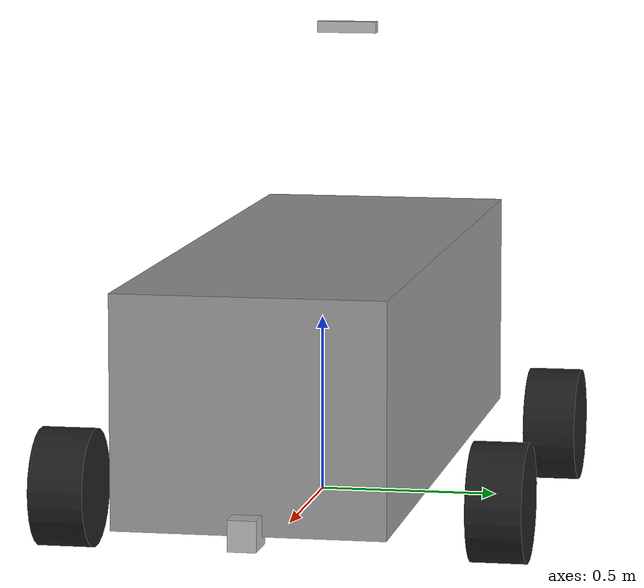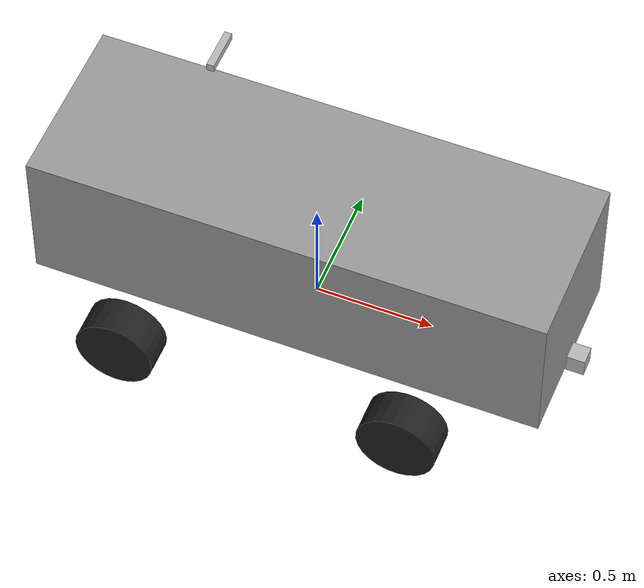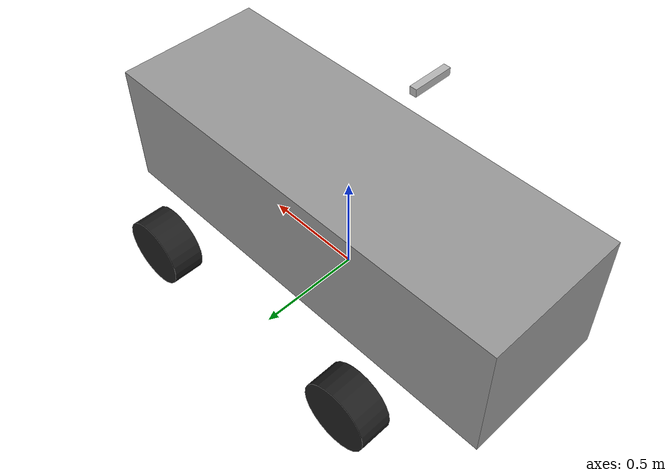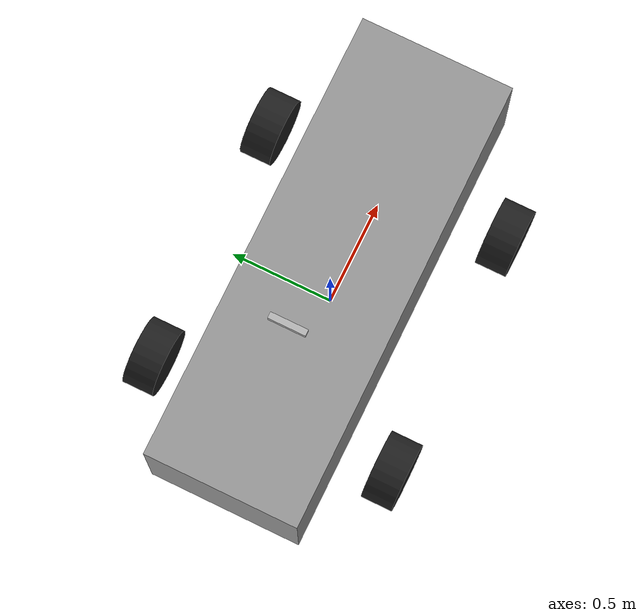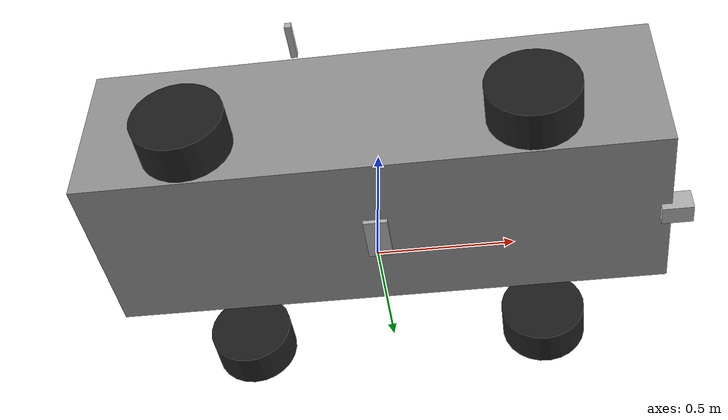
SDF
<?xml version="1.0"?>
<sdf version="1.6">
  <model name="QEV2">
    <link name="chassis">
      <pose>0 0 0.4 0 0 0</pose>
      <inertial>
        <mass>46</mass>
        <inertia>
          <ixx>3.5923125</ixx>
          <iyy>19.4891458333</iyy>
          <izz>20.0385583333</izz>
          <ixy>0</ixy>
          <ixz>0</ixz>
          <iyz>0</iyz>
        </inertia>
      </inertial>
      <self_collide>0</self_collide>
      <enable_wind>0</enable_wind>
      <kinematic>0</kinematic>
      <collision name="collision">
        <geometry>
          <box>
            <size>2.165 0.735 0.63</size>
          </box>
        </geometry>
        <surface>
          <friction>
            <ode>
              <mu>1</mu>
              <mu2>1</mu2>
              <fdir1>0 0 0</fdir1>
              <slip1>0</slip1>
              <slip2>0</slip2>
            </ode>
            <torsional>
              <coefficient>1</coefficient>
              <patch_radius>0</patch_radius>
              <surface_radius>0</surface_radius>
              <use_patch_radius>1</use_patch_radius>
              <ode>
                <slip>0</slip>
              </ode>
            </torsional>
          </friction>
          <bounce>
            <restitution_coefficient>0</restitution_coefficient>
            <threshold>1e+06</threshold>
          </bounce>
          <contact>
            <collide_without_contact>0</collide_without_contact>
            <collide_without_contact_bitmask>1</collide_without_contact_bitmask>
            <collide_bitmask>1</collide_bitmask>
            <ode>
              <soft_cfm>0</soft_cfm>
              <soft_erp>0.2</soft_erp>
              <kp>1e+13</kp>
              <kd>1</kd>
              <max_vel>0.01</max_vel>
              <min_depth>0</min_depth>
            </ode>
            <bullet>
              <split_impulse>1</split_impulse>
              <split_impulse_penetration_threshold>-0.01</split_impulse_penetration_threshold>
              <soft_cfm>0</soft_cfm>
              <soft_erp>0.2</soft_erp>
              <kp>1e+13</kp>
              <kd>1</kd>
            </bullet>
          </contact>
        </surface>
      </collision>
      <visual name="visual">
        <geometry>
          <box>
            <size>2.165 0.735 0.63</size>
          </box>
        </geometry>
        <material>
          <script>
            <uri>file://media/materials/scripts/gazebo.material</uri>
            <name>Gazebo/Grey</name>
          </script>
        </material>
        <transparency>0</transparency>
        <cast_shadows>1</cast_shadows>
      </visual>
    </link>
    <link name="wheel_front_right">
      <pose>0.6 -0.6 0.1 -1.5707963267948966 -0.08726646259971647 0</pose>
      <inertial>
        <mass>3</mass>
        <inertia>
          <ixx>0.0262499475</ixx>
          <iyy>0.0262499475</iyy>
          <izz>0.040887015</izz>
          <ixy>0</ixy>
          <ixz>0</ixz>
          <iyz>0</iyz>
        </inertia>
      </inertial>
      <self_collide>0</self_collide>
      <enable_wind>0</enable_wind>
      <kinematic>0</kinematic>
      <collision name="collision">
        <geometry>
          <cylinder>
            <radius>.1651</radius>
            <length>.1524</length>
          </cylinder>
        </geometry>
        <surface>
          <friction>
            <ode>
              <mu>1</mu>
              <mu2>1</mu2>
              <fdir1>0 0 0</fdir1>
              <slip1>0</slip1>
              <slip2>0</slip2>
            </ode>
            <torsional>
              <coefficient>1</coefficient>
              <patch_radius>0</patch_radius>
              <surface_radius>0</surface_radius>
              <use_patch_radius>1</use_patch_radius>
              <ode>
                <slip>0</slip>
              </ode>
            </torsional>
          </friction>
          <bounce>
            <restitution_coefficient>0</restitution_coefficient>
            <threshold>1e+06</threshold>
          </bounce>
          <contact>
            <collide_without_contact>0</collide_without_contact>
            <collide_without_contact_bitmask>1</collide_without_contact_bitmask>
            <collide_bitmask>1</collide_bitmask>
            <ode>
              <soft_cfm>0</soft_cfm>
              <soft_erp>0.2</soft_erp>
              <kp>1e+13</kp>
              <kd>1</kd>
              <max_vel>0.01</max_vel>
              <min_depth>0</min_depth>
            </ode>
            <bullet>
              <split_impulse>1</split_impulse>
              <split_impulse_penetration_threshold>-0.01</split_impulse_penetration_threshold>
              <soft_cfm>0</soft_cfm>
              <soft_erp>0.2</soft_erp>
              <kp>1e+13</kp>
              <kd>1</kd>
            </bullet>
          </contact>
        </surface>
      </collision>
      <visual name="visual">
        <geometry>
          <cylinder>
            <radius>.1651</radius>
            <length>.1524</length>
          </cylinder>
        </geometry>
        <material>
          <script>
            <uri>file://media/materials/scripts/gazebo.material</uri>
            <name>Gazebo/Black</name>
          </script>
        </material>
        <transparency>0</transparency>
        <cast_shadows>1</cast_shadows>
      </visual>
    </link>
    <link name="wheel_front_left">
      <pose>0.6 0.6 0.1 -1.5707963267948966 -0.08726646259971647 0</pose>
      <inertial>
        <mass>3</mass>
        <inertia>
          <ixx>0.0262499475</ixx>
          <iyy>0.0262499475</iyy>
          <izz>0.040887015</izz>
          <ixy>0</ixy>
          <ixz>0</ixz>
          <iyz>0</iyz>
        </inertia>
      </inertial>
      <collision name="collision">
        <geometry>
          <cylinder>
            <radius>.1651</radius>
            <length>.1524</length>
          </cylinder>
        </geometry>
      </collision>
      <visual name="visual">
        <geometry>
          <cylinder>
            <radius>.1651</radius>
            <length>.1524</length>
          </cylinder>
        </geometry>
        <material>
          <script>
            <uri>file://media/materials/scripts/gazebo.material</uri>
            <name>Gazebo/Black</name>
          </script>
        </material>
      </visual>
    </link>
    <link name="wheel_rear_right">
      <pose>-0.6 -0.6 0.1 -1.5707963267948966 0 0</pose>
      <inertial>
        <mass>3</mass>
        <inertia>
          <ixx>0.0262499475</ixx>
          <iyy>0.0262499475</iyy>
          <izz>0.040887015</izz>
          <ixy>0</ixy>
          <ixz>0</ixz>
          <iyz>0</iyz>
        </inertia>
      </inertial>
      <collision name="collision">
        <geometry>
          <cylinder>
            <radius>.1651</radius>
            <length>.1524</length>
          </cylinder>
        </geometry>
        <surface>
          <friction>
            <ode>
              <mu>1</mu>
              <mu2>1</mu2>
              <fdir1>0 0 0</fdir1>
              <slip1>0</slip1>
              <slip2>0</slip2>
            </ode>
            <torsional>
              <coefficient>1</coefficient>
              <patch_radius>0</patch_radius>
              <surface_radius>0</surface_radius>
              <use_patch_radius>1</use_patch_radius>
              <ode>
                <slip>0</slip>
              </ode>
            </torsional>
          </friction>
          <bounce>
            <restitution_coefficient>0</restitution_coefficient>
            <threshold>1e+06</threshold>
          </bounce>
          <contact>
            <collide_without_contact>0</collide_without_contact>
            <collide_without_contact_bitmask>1</collide_without_contact_bitmask>
            <collide_bitmask>1</collide_bitmask>
            <ode>
              <soft_cfm>0</soft_cfm>
              <soft_erp>0.2</soft_erp>
              <kp>1e+13</kp>
              <kd>1</kd>
              <max_vel>0.01</max_vel>
              <min_depth>0</min_depth>
            </ode>
            <bullet>
              <split_impulse>1</split_impulse>
              <split_impulse_penetration_threshold>-0.01</split_impulse_penetration_threshold>
              <soft_cfm>0</soft_cfm>
              <soft_erp>0.2</soft_erp>
              <kp>1e+13</kp>
              <kd>1</kd>
            </bullet>
          </contact>
        </surface>
      </collision>
      <visual name="visual">
        <geometry>
          <cylinder>
            <radius>.1651</radius>
            <length>.1524</length>
          </cylinder>
        </geometry>
        <material>
          <script>
            <uri>file://media/materials/scripts/gazebo.material</uri>
            <name>Gazebo/Black</name>
          </script>
        </material>
      </visual>
    </link>
    <link name="wheel_rear_left">
      <pose>-0.6 0.6 0.1 -1.5707963267948966 0 0</pose>
      <inertial>
        <mass>3</mass>
        <inertia>
          <ixx>0.0262499475</ixx>
          <iyy>0.0262499475</iyy>
          <izz>0.040887015</izz>
          <ixy>0</ixy>
          <ixz>0</ixz>
          <iyz>0</iyz>
        </inertia>
      </inertial>
      <collision name="collision">
        <geometry>
          <cylinder>
            <radius>.1651</radius>
            <length>.1524</length>
          </cylinder>
        </geometry>
      </collision>
      <visual name="visual">
        <geometry>
          <cylinder>
            <radius>.1651</radius>
            <length>.1524</length>
          </cylinder>
        </geometry>
        <material>
          <script>
            <uri>file://media/materials/scripts/gazebo.material</uri>
            <name>Gazebo/Black</name>
          </script>
        </material>
      </visual>
    </link>
    <link name="susp_front_right">
      <pose>0.6 -0.6 0.1 0 0 0</pose>
      <inertial>
        <mass>3</mass>
        <inertia>
          <ixx>0.0208333333333333</ixx>
          <iyy>0.0208333333333333</iyy>
          <izz>0.0208333333333333</izz>
          <ixy>0</ixy>
          <ixz>0</ixz>
          <iyz>0</iyz>
        </inertia>
      </inertial>
      <collision name="collision">
        <geometry>
          <box>
            <size>0.1 0.1 0.1</size>
          </box>
        </geometry>
      </collision>
      <visual name="visual">
        <geometry>
          <box>
            <size>0.1 0.1 0.1</size>
          </box>
        </geometry>
        <material>
          <script>
            <uri>file://media/materials/scripts/gazebo.material</uri>
            <name>Gazebo/Black</name>
          </script>
        </material>
      </visual>
    </link>
    <link name="susp_front_left">
      <pose>0.6 0.6 0.1 0 0 0</pose>
      <inertial>
        <mass>3</mass>
        <inertia>
          <ixx>0.0208333333333333</ixx>
          <iyy>0.0208333333333333</iyy>
          <izz>0.0208333333333333</izz>
          <ixy>0</ixy>
          <ixz>0</ixz>
          <iyz>0</iyz>
        </inertia>
      </inertial>
      <collision name="collision">
        <geometry>
          <box>
            <size>0.1 0.1 0.1</size>
          </box>
        </geometry>
      </collision>
      <visual name="visual">
        <geometry>
          <box>
            <size>0.1 0.1 0.1</size>
          </box>
        </geometry>
        <material>
          <script>
            <uri>file://media/materials/scripts/gazebo.material</uri>
            <name>Gazebo/Black</name>
          </script>
        </material>
      </visual>
    </link>
    <link name="susp_rear_left">
      <pose>-0.6 0.6 0.1 0 0 0</pose>
      <inertial>
        <mass>3</mass>
        <inertia>
          <ixx>0.0208333333333333</ixx>
          <iyy>0.0208333333333333</iyy>
          <izz>0.0208333333333333</izz>
          <ixy>0</ixy>
          <ixz>0</ixz>
          <iyz>0</iyz>
        </inertia>
      </inertial>
      <collision name="collision">
        <geometry>
          <box>
            <size>0.1 0.1 0.1</size>
          </box>
        </geometry>
      </collision>
      <visual name="visual">
        <geometry>
          <box>
            <size>0.1 0.1 0.1</size>
          </box>
        </geometry>
        <material>
          <script>
            <uri>file://media/materials/scripts/gazebo.material</uri>
            <name>Gazebo/Black</name>
          </script>
        </material>
      </visual>
    </link>
    <link name="susp_rear_right">
      <pose>-0.6 -0.6 0.1 0 0 0</pose>
      <inertial>
        <mass>3</mass>
        <inertia>
          <ixx>0.0208333333333333</ixx>
          <iyy>0.0208333333333333</iyy>
          <izz>0.0208333333333333</izz>
          <ixy>0</ixy>
          <ixz>0</ixz>
          <iyz>0</iyz>
        </inertia>
      </inertial>
      <collision name="collision">
        <geometry>
          <box>
            <size>0.1 0.1 0.1</size>
          </box>
        </geometry>
      </collision>
      <visual name="visual">
        <geometry>
          <box>
            <size>0.1 0.1 0.1</size>
          </box>
        </geometry>
        <material>
          <script>
            <uri>file://media/materials/scripts/gazebo.material</uri>
            <name>Gazebo/Black</name>
          </script>
        </material>
      </visual>
    </link>
    <joint name="susp_front_right_prismatic" type="prismatic">
      <parent>chassis</parent>
      <child>susp_front_right</child>
      <axis>
        <xyz>0 0 -1</xyz>
        <limit>
          <lower>-0.075</lower>
          <upper>0.075</upper>
        </limit>
        <dynamics>
          <damping>700</damping>
          <spring_stiffness>1500</spring_stiffness>
          <spring_reference>0.001</spring_reference>
        </dynamics>
      </axis>
      <physics>
        <ode>
          <implicit_spring_damper>1</implicit_spring_damper>
        </ode>
      </physics>
    </joint>
    <joint name="susp_front_left_prismatic" type="prismatic">
      <parent>chassis</parent>
      <child>susp_front_left</child>
      <axis>
        <xyz>0 0 -1</xyz>
        <limit>
          <lower>-0.075</lower>
          <upper>0.075</upper>
        </limit>
        <dynamics>
          <damping>700</damping>
          <spring_stiffness>1500</spring_stiffness>
          <spring_reference>0.001</spring_reference>
        </dynamics>
      </axis>
      <physics>
        <ode>
          <implicit_spring_damper>1</implicit_spring_damper>
        </ode>
      </physics>
    </joint>
    <joint name="susp_rear_right_prismatic" type="prismatic">
      <parent>chassis</parent>
      <child>susp_rear_right</child>
      <axis>
        <xyz>0 0 -1</xyz>
        <limit>
          <lower>-0.075</lower>
          <upper>0.075</upper>
        </limit>
        <dynamics>
          <damping>700</damping>
          <spring_stiffness>1500</spring_stiffness>
          <spring_reference>0.001</spring_reference>
        </dynamics>
      </axis>
      <physics>
        <ode>
          <implicit_spring_damper>1</implicit_spring_damper>
        </ode>
      </physics>
    </joint>
    <joint name="susp_rear_left_prismatic" type="prismatic">
      <parent>chassis</parent>
      <child>susp_rear_left</child>
      <axis>
        <xyz>0 0 -1</xyz>
        <limit>
          <lower>-0.075</lower>
          <upper>0.075</upper>
        </limit>
        <dynamics>
          <damping>700</damping>
          <spring_stiffness>1500</spring_stiffness>
          <spring_reference>0.001</spring_reference>
        </dynamics>
      </axis>
      <physics>
        <ode>
          <implicit_spring_damper>1</implicit_spring_damper>
        </ode>
      </physics>
    </joint>
    <joint name="wheel_front_right_steer_spin" type="universal">
      <parent>susp_front_right</parent>
      <child>wheel_front_right</child>
      <axis>
        <xyz>0 -1 0</xyz>
        <use_parent_model_frame>0</use_parent_model_frame>
        <limit>
          <lower>-0.6108652381980153</lower>
          <upper>0.6108652381980153</upper>
          <effort>-1</effort>
          <velocity>-1</velocity>
        </limit>
        <dynamics>
          <spring_reference>0</spring_reference>
          <spring_stiffness>0</spring_stiffness>
          <damping>0</damping>
          <friction>0</friction>
        </dynamics>
      </axis>
      <axis2>
        <xyz>0 0 1</xyz>
        <use_parent_model_frame>0</use_parent_model_frame>
        <dynamics>
          <spring_reference>0</spring_reference>
          <spring_stiffness>0</spring_stiffness>
          <damping>0</damping>
          <friction>0</friction>
        </dynamics>
        <limit>
          <lower>-1e+16</lower>
          <upper>1e+16</upper>
          <effort>-1</effort>
          <velocity>-1</velocity>
        </limit>
      </axis2>
      <physics>
        <ode>
          <limit>
            <cfm>0</cfm>
            <erp>0.2</erp>
          </limit>
          <suspension>
            <cfm>0</cfm>
            <erp>0.2</erp>
          </suspension>
        </ode>
      </physics>
    </joint>
    <joint name="wheel_front_left_steer_spin" type="universal">
      <parent>susp_front_left</parent>
      <child>wheel_front_left</child>
      <axis>
        <xyz>0 -1 0</xyz>
        <limit>
          <lower>-0.6108652381980153</lower>
          <upper>0.6108652381980153</upper>
          <effort>-1</effort>
          <velocity>-1</velocity>
        </limit>
        <dynamics>
          <spring_reference>0</spring_reference>
          <spring_stiffness>0</spring_stiffness>
          <damping>0</damping>
          <friction>0</friction>
        </dynamics>
      </axis>
      <axis2>
        <xyz>0 0 1</xyz>
        <use_parent_model_frame>0</use_parent_model_frame>
      </axis2>
      <physics>
        <ode>
          <limit>
            <cfm>0</cfm>
            <erp>0.2</erp>
          </limit>
          <suspension>
            <cfm>0</cfm>
            <erp>0.2</erp>
          </suspension>
        </ode>
      </physics>
    </joint>
    <joint name="wheel_rear_right_spin" type="revolute">
      <parent>susp_rear_right</parent>
      <child>wheel_rear_right</child>
      <axis>
        <xyz>0 0 1</xyz>
        <use_parent_model_frame>0</use_parent_model_frame>
        <limit>
          <lower>-1e+16</lower>
          <upper>1e+16</upper>
          <effort>-1</effort>
          <velocity>-1</velocity>
        </limit>
        <dynamics>
          <spring_reference>0</spring_reference>
          <spring_stiffness>0</spring_stiffness>
          <damping>0</damping>
          <friction>0</friction>
        </dynamics>
      </axis>
      <physics>
        <ode>
          <limit>
            <cfm>0</cfm>
            <erp>0.2</erp>
          </limit>
          <suspension>
            <cfm>0</cfm>
            <erp>0.2</erp>
          </suspension>
        </ode>
      </physics>
    </joint>
    <joint name="wheel_rear_left_spin" type="revolute">
      <parent>susp_rear_left</parent>
      <child>wheel_rear_left</child>
      <axis>
        <xyz>0 0 1</xyz>
        <use_parent_model_frame>0</use_parent_model_frame>
        <limit>
          <lower>-1e+16</lower>
          <upper>1e+16</upper>
          <effort>-1</effort>
          <velocity>-1</velocity>
        </limit>
        <dynamics>
          <spring_reference>0</spring_reference>
          <spring_stiffness>0</spring_stiffness>
          <damping>0</damping>
          <friction>0</friction>
        </dynamics>
      </axis>
      <physics>
        <ode>
          <limit>
            <cfm>0</cfm>
            <erp>0.2</erp>
          </limit>
          <suspension>
            <cfm>0</cfm>
            <erp>0.2</erp>
          </suspension>
        </ode>
      </physics>
    </joint>
    <!-- Add lidar to QEV2 -->
    <include>
      <uri>model://Horizon_LiDAR</uri>
      <pose>1.1 0 0.1 0 0 0</pose>
    </include>
    <joint name="horizon_lidar_joint" type="fixed">
      <child>Horizon_LiDAR::horizon_lidar_base</child>
      <parent>chassis</parent>
    </joint>
    <!-- Add (stereo) camera to QEV2 -->
    <include>
      <uri>model://Camera</uri>
      <pose>-0.4 0 1.3 0 0 0</pose>
    </include>
    <joint name="zed_camera_joint" type="fixed">
      <child>ZED_Camera::zed_camera_base</child>
      <parent>chassis</parent>
    </joint>
    <!-- Add the IMU to QEV2 -->
    <include>
      <uri>model://QEV2_IMU</uri>
      <pose>0 0.1 0.09 1.726 0 0</pose>
    </include>
    <joint name="qev2_imu_joint" type="fixed">
      <child>QEV2_IMU::imu_base</child>
      <parent>chassis</parent>
    </joint>
  </model>
</sdf>

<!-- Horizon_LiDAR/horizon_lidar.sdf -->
<sdf version="1.6">
  <model name="Horizon_LiDAR">
    <link name="horizon_lidar_base">
    <sensor type="ray" name="sensor">
      <pose>0.057 0 0.020 0 0 0</pose>
      <!--Enable visualization here-->
	<always_on>1</always_on>
	<visualize>true</visualize>
	<update_rate>30</update_rate>
      <plugin name="qev2_lidar_plugin" filename="/home/nick-pc-ubuntu/catkin_ws/src/qutms_autonomous/libgazebo_plugins/libgazebo_ros_laser.so">
      <robotNamespace>QEV2_lidar</robotNamespace>
      <topicName>lidar_scan</topicName>
      <frameName>lidar_frame</frameName>
	<pose>0.057 0 0.020 0 0 0</pose>
    <ray>
      <!--Only need horizontal beams-->
      <scan>
	<horizontal>
	  <samples>40</samples>
	  <resolution>1</resolution>

	  <!--Grab angular resolution in radians-->
	  <min_angle>-0.7129669994</min_angle>
	  <max_angle>0.7129669994</max_angle>
	</horizontal>
	<vertical>
	  <samples>40</samples>
	  <resolution>1</resolution>

	  <!--Grab angular resolution in radians-->
	  <min_angle>-0.2190388211</min_angle>
	  <max_angle>0.2190388211</max_angle>
	</vertical>
      </scan>
      <range>
	<min>1</min>
	<max>20</max>
	<resolution>0.01</resolution>
      </range>
    </ray>
    </plugin>
    </sensor>
    <pose>0 0 0 0 0 0</pose>
      <inertial>
	 <mass>1.18</mass>
	  <inertia>
	    <ixx>0.00199429833</ixx>
	    <iyy>0.00188347666</iyy>
	    <izz>0.00127685833</izz>
	    <ixy>0</ixy>
	    <ixz>0</ixz>
	    <iyz>0</iyz>
	  </inertia>
      </inertial>
    <collision name="collision">
      <geometry>
	<box>
	  <size>0.115 0.077 0.084</size>
	</box>
      </geometry>
    </collision>
    <visual name="visual">
      <geometry>
	<box>
	  <size>0.115 0.077 0.084</size>
	</box>
      </geometry>
    </visual>
    </link>

  </model>
</sdf>

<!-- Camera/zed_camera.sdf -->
<sdf version="1.6">
  <model name="ZED_Camera">
  <!-- This is a stereo camera, so we define two cameras individually -->
    <link name="zed_camera_base">
    <sensor type="multicamera" name="qev2_cam">
      <pose>0.06 0 0 0 0 1.5707</pose>
      <update_rate>30</update_rate>
      <camera name="z_left">
	<!-- Grab horizontal FOV from datasheet -->
	<horizontal_fov>1.5707963268</horizontal_fov>
	<image>
	<!-- Image resolution at 30 FPS is 3840x1080 -->
	  <width>3840</width>
	  <height>1080</height>
	  <format>R8G8B8</format>
	</image>
	<clip>
	  <near>0.5</near>
	  <far>25</far>
	</clip>
      </camera>
    <camera name="z_right">
      <pose>-0.06 0 0 0 0 1.5707</pose>
	<horizontal_fov>1.5707963268</horizontal_fov>
	<image>
	<!-- Image resolution at 30 FPS is 3840x1080 -->
	  <width>3840</width>
	  <height>1080</height>
	  <format>R8G8B8</format>
	</image>
	<clip>
	  <near>0.5</near>
	  <far>25</far>
	</clip>
      </camera>
    <plugin name="qev2_camera_plugin" filename="/home/nick-pc-ubuntu/catkin_ws/src/qutms_autonomous/libgazebo_plugins/libgazebo_ros_multicamera.so">
      <always_on>1</always_on>
      <update_rate>0.0</update_rate>
      <visualize>true</visualize>
      <robotNamespace>QEV2_camera</robotNamespace>
      <imageTopicName>image_raw</imageTopicName>
      <frameName>frame_left</frameName>
    </plugin>
    </sensor>
    <pose>0 0 0 0 0 -1.5707</pose>
      <inertial>
	 <mass>0.135</mass>
	  <inertia>
	    <ixx>0.00000110261</ixx>
	    <iyy>0.00003751945</iyy>
	    <izz>0.00003100781</izz>
	    <ixy>0</ixy>
	    <ixz>0</ixz>
	    <iyz>0</iyz>
	  </inertia>
      </inertial>
    <collision name="collision">
      <geometry>
	<box>
	  <size>0.175 0.03 0.033</size>
	</box>
      </geometry>
    </collision>
    <visual name="visual">
      <geometry>
	<box>
	  <size>0.175 0.03 0.033</size>
	</box>
      </geometry>
    </visual>
    </link>

  </model>
</sdf>

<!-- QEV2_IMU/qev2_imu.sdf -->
<sdf version="1.6">
  <model name="QEV2_IMU">
    <link name="imu_base">
    <sensor type="imu" name="sensor">
      <pose>0.09 0.045 0.009 0 0 0</pose>
      <always_on>1</always_on>
      <visualize>false</visualize>
      <update_rate>30</update_rate>
      <plugin name="qev2_imu_plugin" filename="/home/nick-pc-ubuntu/catkin_ws/src/qutms_autonomous/libgazebo_plugins/libgazebo_ros_imu_sensor.so">
      <topicName>imu_data</topicName>
      <robotNamespace>QEV2_imu</robotNamespace>
      <bodyName>imu_frame</bodyName>
      <xyzOffset>0 0 0</xyzOffset>
      <rpyOffset>0 0 0</rpyOffset>
      <updateRateHZ>30</updateRateHZ>
      <frameName>imu_frame</frameName>
    <imu>
      <orientation_reference_frame>
        <localization>CUSTOM</localization>
        <custom_rpy>0 0 0</custom_rpy>
	<parent_frame></parent_frame>
      </orientation_reference_frame>
	<angular_velocity>
	  <x>
	    <noise type="gaussian">
	      <mean>1</mean>
	      <stddev>1</stddev>
	    </noise>
	  </x>
	  <y>
	    <noise type="gaussian">
	      <mean>1</mean>
	      <stddev>1</stddev>
	    </noise>
	  </y>
	  <z>
	    <noise type="gaussian">
	      <mean>1</mean>
	      <stddev>1</stddev>
	    </noise>
	  </z>
	</angular_velocity>
	<linear_acceleration>
	  <x>
	    <noise type="gaussian">
	      <mean>1</mean>
	      <stddev>1</stddev>
	    </noise>
	  </x>
	  <y>
	    <noise type="gaussian">
	      <mean>1</mean>
	      <stddev>1</stddev>
	    </noise>
	  </y>
	  <z>
	    <noise type="gaussian">
	      <mean>1</mean>
	      <stddev>1</stddev>
	    </noise>
	  </z>
	</linear_acceleration>
      </imu>
    </plugin>
    </sensor>
    <pose>0 0 0.1 0 1.7507 1.5707</pose>
      <inertial>
	<mass>0.385</mass>
	  <inertia>
	    <ixx>0.00000008608</ixx>
	    <iyy>0.00000033679</iyy>
	    <izz>0.00000860809</izz>
	    <ixy>0</ixy>
	    <ixz>0</ixz>
	    <iyz>0</iyz>
	  </inertia>
      </inertial>
    <collision name="collision">
      <geometry>
	<box>
	  <size>0.18 0.091 0.018</size>
	</box>
      </geometry>
    </collision>
    <visual name="visual">
      <geometry>
	<box>
	  <size>0.18 0.091 0.018</size>
	</box>
      </geometry>
    </visual>
    </link>

  </model>
</sdf>
